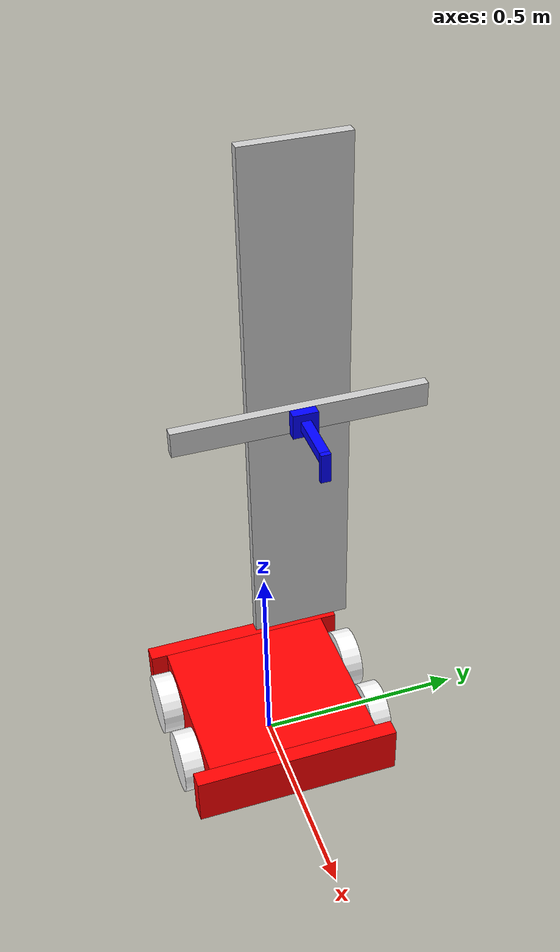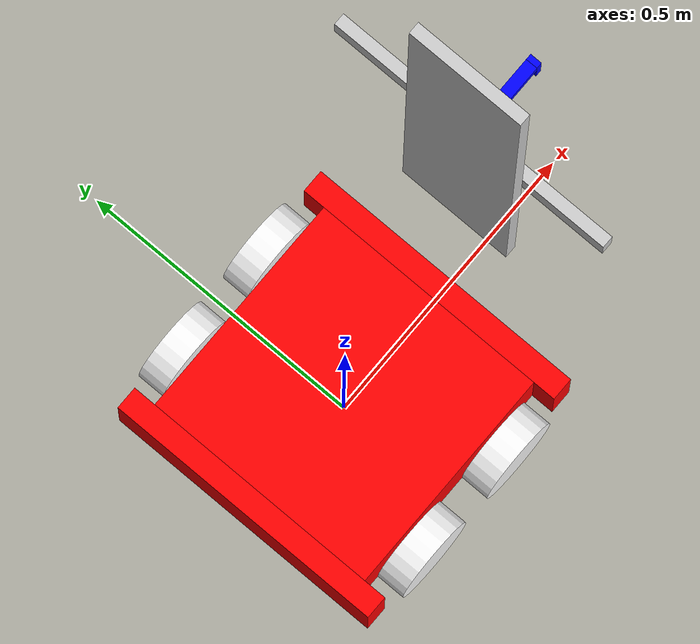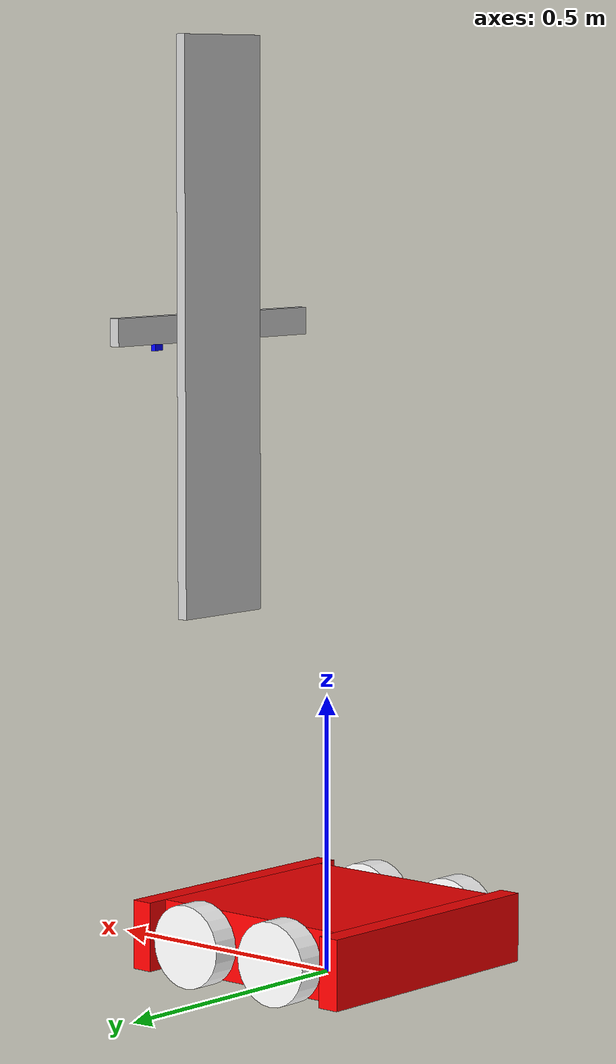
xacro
<?xml version="1.0"?>

<robot name="mobile_robot" xmlns:xacro="https://www.ros.org/wiki/xacro" >
    <xacro:include filename="$(find do_description)/models/fourwheeler.urdf.xacro" />
    <xacro:fourwheeler_base_macro/>
    <!--mobile base 50 cm x 50 cm square-->

    <xacro:include filename="$(find do_description)/models/device.urdf.xacro" />
    <xacro:operate_device_macro parent="base_link" robotname="fourwheeler">
      <xacro:property name="location_x" value="0.2" />
      <xacro:property name="location_y" value="0.0" />
      <xacro:property name="location_z" value="0.0625" />
    </xacro:operate_device_macro>

</robot>

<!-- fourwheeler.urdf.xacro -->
<robot name="fourwheeler" xmlns:xacro="http://ros.org/wiki/xacro">

    <xacro:property name="base_width" value="0.42"/>
    <xacro:property name="base_length" value="0.40"/>
    <xacro:property name="base_height" value="0.125"/>
    <xacro:property name="base_mass" value="30"/>

    <xacro:property name="wheel_radius" value="0.075"/>
    <xacro:property name="wheel_width" value="0.05"/>
    <xacro:property name="wheel_mass" value="0.5"/>

    <xacro:property name="bumper_length" value="0.04" />
    <xacro:property name="bumper_width" value="0.5" />
    <xacro:property name="bumper_height" value="0.125" />
    <xacro:property name="bumper_mass" value="1" />

    <xacro:property name="wheel_ygap" value="0.03"/>

    <!-- Position the wheels along the z-axis -->
    <xacro:property name="wheel_zoff" value="0.05"/>

    <!-- Position the wheels along the x-axis -->
    <xacro:property name="wheel_xoff" value="0.1"/>

  <!-- Define intertial property macros  -->
    <xacro:macro name="box_inertia" params="m w h d">
        <inertial>
        <origin xyz="0 0 0" rpy="${pi/2} 0 ${pi/2}"/>
        <mass value="${m}"/>
        <inertia ixx="${(m/12) * (h*h + d*d)}" ixy="0.0" ixz="0.0" iyy="${(m/12) * (w*w + d*d)}" iyz="0.0" izz="${(m/12) * (w*w + h*h)}"/>
        </inertial>
    </xacro:macro>

    <xacro:macro name="cylinder_inertia" params="m r h">
        <inertial>
        <origin xyz="0 0 0" rpy="${pi/2} 0 0" />
        <mass value="${m}"/>
        <inertia ixx="${(m/12) * (3*r*r + h*h)}" ixy = "0" ixz = "0" iyy="${(m/12) * (3*r*r + h*h)}" iyz = "0" izz="${(m/2) * (r*r)}"/>
        </inertial>
    </xacro:macro>

    <xacro:macro name="fourwheeler_base_macro">
    <!-- ****************** ROBOT BASE FOOTPRINT ***************************  -->
    <!-- Define the center of the main robot chassis projected on the ground -->
    <link name="base_footprint"/>

    <!-- The base footprint of the robot is located underneath the chassis -->
    <joint name="base_joint" type="fixed">
        <parent link="base_footprint"/>
        <child link="base_link" />
        <origin xyz="0.0 0.0 ${(wheel_radius+wheel_zoff)}" rpy="0 0 0"/>
    </joint>

    <!-- ********************** ROBOT BASE *********************************  -->
    <link name="base_link">
        <visual>
        <origin xyz="0 0 -${wheel_zoff}" rpy="0 0 0"/>
        <geometry>
            <box size="${base_length} ${base_width} ${base_height}"/>
        </geometry>
        <material name="Red">
            <color rgba="${255/255} ${0/255} ${0/255} 1.0"/>
        </material>
        </visual>

        <collision>
        <geometry>
            <box size="${base_length} ${base_width} ${base_height}"/>
        </geometry>
        </collision>

        <xacro:box_inertia m="${base_mass}" w="${base_width}" d="${base_length}" h="${base_height}"/>

    </link>

    <gazebo reference="base_link">
        <material>Gazebo/Red</material>
    </gazebo>

    <joint name="fbumper_joint" type="fixed">
        <parent link="base_link"/>
        <child link="fbumper_link" />
        <origin xyz="0.0 0.0 0.0" rpy="0 0 0"/>
    </joint>

    <link name="fbumper_link">
        <visual>
        <origin xyz="${(base_length/2 + bumper_length/2)} 0 -${wheel_zoff}" rpy="0 0 0"/>
        <geometry>
            <box size="${bumper_length} ${bumper_width} ${bumper_height}"/>
        </geometry>
        <material name="Red">
            <color rgba="${255/255} ${0/255} ${0/255} 1.0"/>
        </material>
        </visual>

        <collision>
        <geometry>
            <box size="${bumper_length} ${bumper_width} ${bumper_height}"/>

        </geometry>
        </collision>

        <xacro:box_inertia m="${bumper_mass}" w="${bumper_width}" d="${bumper_length}" h="${bumper_height}"/>

    </link>

    <gazebo reference="fbumper_link">
        <material>Gazebo/Red</material>
    </gazebo>

    <joint name="rbumper_joint" type="fixed">
        <parent link="base_link"/>
        <child link="rbumper_link" />
        <origin xyz="0.0 0.0 0.0" rpy="0 0 0"/>
    </joint>

    <link name="rbumper_link">
        <visual>
        <origin xyz="-${(base_length/2 + bumper_length/2)} 0 -${wheel_zoff}" rpy="0 0 0"/>
        <geometry>
            <box size="${bumper_length} ${bumper_width} ${bumper_height}"/>
        </geometry>
        <material name="Red">
            <color rgba="${255/255} ${0/255} ${0/255} 1.0"/>
        </material>
        </visual>

        <collision>
        <geometry>
            <box size="${bumper_length} ${bumper_width} ${bumper_height}"/>

        </geometry>
        </collision>

        <xacro:box_inertia m="${bumper_mass}" w="${bumper_width}" d="${bumper_length}" h="${bumper_height}"/>

    </link>

    <gazebo reference="rbumper_link">
        <material>Gazebo/Red</material>
    </gazebo>

    <!-- *********************** DRIVE WHEELS ******************************  -->

    <xacro:macro name="wheel" params="prefix x_reflect y_reflect">
        <link name="${prefix}_link">
        <visual>
            <origin xyz="0 0 0" rpy="1.5707963267949 0 0"/>
            <geometry>
                <cylinder radius="${wheel_radius}" length="${wheel_width}"/>
            </geometry>
            <material name="White">
            <color rgba="${255/255} ${255/255} ${255/255} 1.0"/>
            </material>
        </visual>

        <collision>
            <origin xyz="0 0 0" rpy="${pi/2} 0 0"/>
            <geometry>
            <cylinder radius="${wheel_radius}" length="${wheel_width}"/>
            </geometry>
        </collision>

        <xacro:cylinder_inertia m="${wheel_mass}" r="${wheel_radius}" h="${wheel_width}"/>

        </link>

        <!-- Connect the wheels to the base_link at the appropriate location, and
            define a continuous joint to allow the wheels to freely rotate about
            an axis -->
        <joint name="${prefix}_joint" type="revolute">
        <parent link="base_link"/>
        <child link="${prefix}_link"/>
        <origin xyz="${x_reflect*wheel_xoff} ${y_reflect*(base_width/2+wheel_ygap)} ${-wheel_zoff}" rpy="0 0 0"/>
        <limit upper="3.1415" lower="-3.1415" effort="30" velocity="5.0"/>
        <axis xyz="0 1 0"/>
        </joint>
    </xacro:macro>

    <xacro:wheel prefix="drivewhl_l" x_reflect="1" y_reflect="1" />
    <xacro:wheel prefix="drivewhl_r" x_reflect="1" y_reflect="-1" />
    <xacro:wheel prefix="rearwhl_l" x_reflect="-1" y_reflect="1" />
    <xacro:wheel prefix="rearwhl_r" x_reflect="-1" y_reflect="-1" />

    <gazebo>
    <plugin name='diff_drive' filename='libgazebo_ros_diff_drive.so'>
        <ros>
        <namespace>/</namespace>
        </ros>

        <!-- wheels -->
        <left_joint>drivewhl_l_joint</left_joint>
        <right_joint>drivewhl_r_joint</right_joint>

        <!-- kinematics -->
        <wheel_separation>0.2</wheel_separation>
        <wheel_diameter>0.15</wheel_diameter>

        <!-- limits -->
        <max_wheel_torque>20</max_wheel_torque>
        <max_wheel_acceleration>1.0</max_wheel_acceleration>

        <!-- output -->
        <publish_odom>true</publish_odom>
        <publish_odom_tf>false</publish_odom_tf>
        <publish_wheel_tf>true</publish_wheel_tf>

        <odometry_frame>odom</odometry_frame>
        <robot_base_frame>base_link</robot_base_frame>
    </plugin>
    </gazebo>

</xacro:macro>
</robot>

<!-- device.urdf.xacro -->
<robot name="device" xmlns:xacro="https://www.ros.org/wiki/xacro" >

    <xacro:property name="PI" value="3.1415926535897931"/>
    <xacro:property name="location_x" value="0.25" />
    <xacro:property name="location_y" value="0" />
    <xacro:property name="location_z" value="0.5" />

    <xacro:property name="bar_x" value="0.02" />
    <xacro:property name="bar_y" value="0.2" />
    <xacro:property name="bar_z" value="1.05" />
    <xacro:property name="bar_m" value="0.5" />

    <xacro:property name="vslider_x" value="0.02" />
    <xacro:property name="vslider_y" value="0.5" />
    <xacro:property name="vslider_z" value="0.05" />
    <xacro:property name="vslider_m" value="0.2" />

    <xacro:property name="hslider_x" value="0.02" />
    <xacro:property name="hslider_y" value="0.05" />
    <xacro:property name="hslider_z" value="0.05" />
    <xacro:property name="hslider_m" value="0.1" />

    <xacro:property name="finger_x" value="0.1" />
    <xacro:property name="finger_y" value="0.02" />
    <xacro:property name="finger_z" value="0.02" />
    <xacro:property name="finger_m" value="0.01" />

    <xacro:property name="tip_x" value="0.01" />
    <xacro:property name="tip_y" value="0.02" />
    <xacro:property name="tip_z" value="0.06" />
    <xacro:property name="tip_m" value="0.01" />

  <!-- Define intertial property macros  -->
    <xacro:macro name="box_inertia" params="m w h d">
        <inertial>
        <origin xyz="0 0 0" rpy="${pi/2} 0 ${pi/2}"/>
        <mass value="${m}"/>
        <inertia ixx="${(m/12) * (h*h + d*d)}" ixy="0.0" ixz="0.0" iyy="${(m/12) * (w*w + d*d)}" iyz="0.0" izz="${(m/12) * (w*w + h*h)}"/>
        </inertial>
    </xacro:macro>

    <xacro:macro name="operate_device_macro" params="parent robotname">

    <!-- Define the center of the main robot chassis projected on the ground -->

    <!-- The base footprint of the robot is located underneath the chassis -->
      <joint name="joint_support_bar" type="fixed">
        <origin xyz="${location_x} ${location_y} ${location_z}" rpy="0 0 0"/>
        <parent link="${parent}"/>
        <child link="base_link_bar"/>
      </joint>

    <link name="base_link_bar">
    <visual>
        <origin xyz="${bar_x/2} 0 ${bar_z/2}" rpy="0 0 0" />
        <geometry>
        <box size="${bar_x} ${bar_y} ${bar_z}"/>
        </geometry>
        <material name="Gray">
            <color rgba="${205/255} ${205/255} ${205/255} 1.0"/>
        </material>
    </visual>
    <collision>
        <origin xyz="${bar_x/2} 0 ${bar_z/2}" rpy="0 0 0" />
        <geometry>
        <box size="${bar_x} ${bar_y} ${bar_z}"/>
        </geometry>
    </collision>
    <xacro:box_inertia m="${bar_m}" w="${bar_y}" d="${bar_x}" h="${bar_z}"/>

    </link>

    <joint name="joint_bar_vslider" type="prismatic">
        <origin xyz="${bar_x} 0 0" rpy="0 0 0"/>
        <parent link="base_link_bar"/>
        <child link="link_vslider"/>
        <axis xyz="0 0 1"/>
        <limit upper="${bar_z-0.05}" lower="0.05" effort="1000.0" velocity="0.1"/>
        <dynamics damping="0" friction="2.0"/>
    </joint>
    <link name="link_vslider">
    <visual>
        <origin xyz="${vslider_x/2} 0 0" rpy="0 0 0" />
        <geometry>
        <box size="${vslider_x} ${vslider_y} ${vslider_z}"/>
        </geometry>
        <material name="Gray">
            <color rgba="${205/255} ${205/255} ${205/255} 1.0"/>
        </material>
    </visual>
    <collision>
        <origin xyz="${vslider_x/2} 0 0" rpy="0 0 0" />
        <geometry>
        <box size="${vslider_x} ${vslider_y} ${vslider_z}"/>
        </geometry>
    </collision>
    <xacro:box_inertia m="${vslider_m}" w="${vslider_y}" d="${vslider_x}" h="${vslider_z}"/>

    </link>

    <joint name="joint_slider_slider" type="prismatic">
        <origin xyz="${vslider_x} 0 0" rpy="0 0 0"/>
        <parent link="link_vslider"/>
        <child link="link_hslider"/>
        <axis xyz="0 1 0"/>
        <limit upper="${vslider_y/2}" lower="-${vslider_y/2}" effort="1000.0" velocity="0.1"/>
        <dynamics damping="0" friction="2.0"/>
    </joint>
    <link name="link_hslider">
    <visual>
        <origin xyz="${hslider_x/2} 0 0" rpy="0 0 0" />
        <geometry>
        <box size="${hslider_x} ${hslider_y} ${hslider_z}"/>
        </geometry>
        <material name="Blue">
            <color rgba="${0/255} ${0/255} ${255/255} 1.0"/>
        </material>
    </visual>
    <collision>
        <origin xyz="${hslider_x/2} 0 0" rpy="0 0 0" />
        <geometry>
        <box size="${hslider_x} ${hslider_y} ${hslider_z}"/>
        </geometry>
    </collision>
    <xacro:box_inertia m="${hslider_m}" w="${hslider_y}" d="${hslider_x}" h="${hslider_z}"/>

    </link>

    <joint name="joint_slider_finger" type="fixed">
        <origin xyz="${hslider_x} 0 0" rpy="0 0 0"/>
        <parent link="link_hslider"/>
        <child link="link_finger"/>
    </joint>

    <link name="link_finger">

    <visual>
        <origin xyz="${finger_x/2} 0 0" rpy="0 0 0" />
        <geometry>
            <box size="${finger_x} ${finger_y} ${finger_z}"/>
        </geometry>
        <material name="Blue">
            <color rgba="${0/255} ${0/255} ${255/255} 1.0"/>
        </material>
    </visual>
    <collision>
        <origin xyz="${finger_x/2} 0 0" rpy="0 0 0" />
        <geometry>
            <box size="${finger_x} ${finger_y} ${finger_z}"/>
        </geometry>
    </collision>
    <xacro:box_inertia m="${finger_m}" w="${finger_y}" d="${finger_x}" h="${finger_z}"/>

    </link>

    <joint name="joint_finger_tip" type="fixed">
        <origin xyz="${finger_x} 0 0" rpy="0 0 0"/>
        <parent link="link_finger"/>
        <child link="link_tip"/>
    </joint>
    <link name="link_tip">
    <visual>
        <origin xyz="${tip_x/2} 0 -0.02" rpy="0 0 0" />
        <geometry>
        <box size="${tip_x} ${tip_y} ${tip_z}"/>
        </geometry>
        <material name="Blue">
            <color rgba="${0/255} ${0/255} ${255/255} 1.0"/>
        </material>
    </visual>
    <collision>
        <origin xyz="${tip_x/2} 0 -0.02" rpy="0 0 0" />
        <geometry>
        <box size="${tip_x} ${tip_y} ${tip_z}"/>
        </geometry>
    </collision>
    <xacro:box_inertia m="${tip_m}" w="${tip_y}" d="${tip_x}" h="${tip_z}"/>

    </link>

    <transmission name="vertical_trans">
    <type>transmission_interface/SimpleTransmission</type>
    <joint name="joint_bar_vslider">
        <hardwareInterface>hardware_interface/EffortJointInterface</hardwareInterface>
    </joint>
    <actuator name="vertical_motor">
        <hardwareInterface>hardware_interface/EffortJointInterface</hardwareInterface>
        <mechanicalReduction>1</mechanicalReduction>
    </actuator>
    </transmission>

    <transmission name="horizontal_trans">
    <type>transmission_interface/SimpleTransmission</type>
    <joint name="joint_slider_slider">
        <hardwareInterface>hardware_interface/EffortJointInterface</hardwareInterface>
    </joint>
    <actuator name="horizontal_motor">
        <hardwareInterface>hardware_interface/EffortJointInterface</hardwareInterface>
        <mechanicalReduction>1</mechanicalReduction>
    </actuator>
    </transmission>

    <gazebo>
    <plugin name="gazebo_ros_control" filename="libgazebo_ros_control.so">
        <robotNamespace>/mobile_robot</robotNamespace>
        <robotSimType>gazebo_ros_control/DefaultRobotHWSim</robotSimType>
        <legacyModeNS>true</legacyModeNS>
    </plugin>
    </gazebo>
    </xacro:macro>
</robot>
